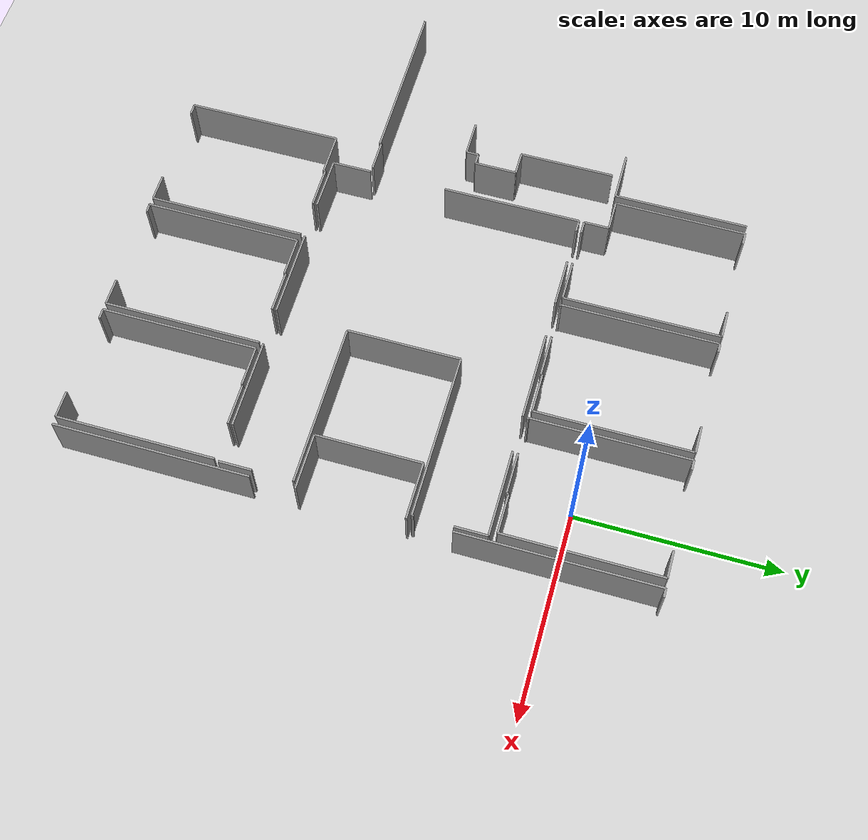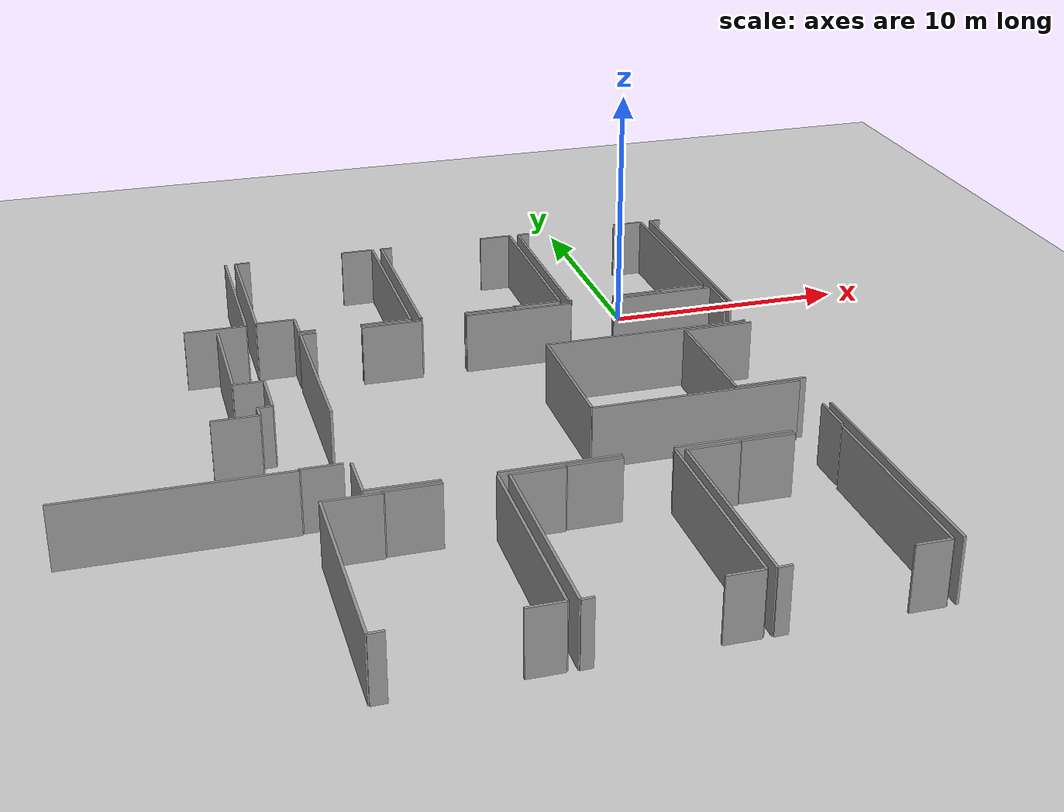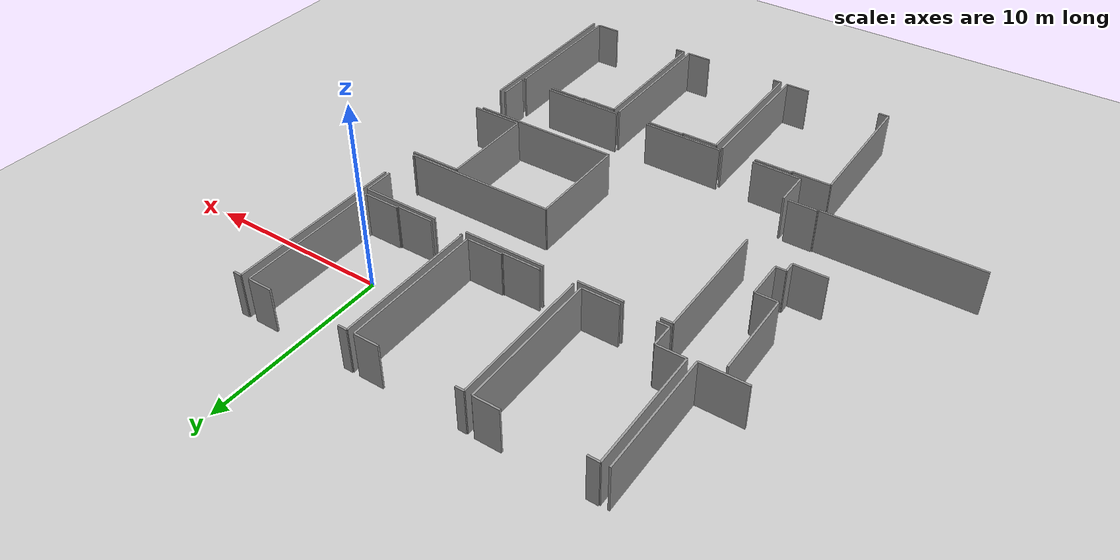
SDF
<sdf version="1.6">
 <world name="default">
  <model name="ground_plane">
   <static>1</static>
   <link name="link">
    <collision name="collision">
     <geometry><plane><normal>0 0 1</normal><size>100 100</size></plane></geometry>
     <surface><friction><ode><mu>100</mu><mu2>50</mu2></ode></friction></surface>
    </collision>
    <visual name="visual">
     <cast_shadows>0</cast_shadows>
     <geometry><plane><normal>0 0 1</normal><size>100 100</size></plane></geometry>
     <material>
      <script><uri>file://media/materials/scripts/gazebo.material</uri><name>Gazebo/Grey</name></script>
     </material>
    </visual>
   </link>
  </model>
  <model name="0510035341_A_40_1_103">
   <static>1</static>
   <link name="Wall_120">
    <collision name="Wall_120_Collision">
     <geometry><box><size>6.64694305123 0.1 2.5</size></box></geometry>
     <pose>3.32347152562 0 1.25 0 0 0</pose>
    </collision>
    <visual name="Wall_120_Visual">
     <pose>3.32347152562 0 1.25 0 0 0</pose>
     <geometry><box><size>6.64694305123 0.1 2.5</size></box></geometry>
     <material>
      <script><uri>file://media/materials/scripts/gazebo.material</uri><name>Gazebo/Grey</name></script>
      <ambient>1 1 1 1</ambient>
     </material>
    </visual>
    <pose>96.585867564 -19.2693797219 0 0 0 -1.57079632679</pose>
   </link>
   <link name="Wall_121">
    <collision name="Wall_121_Collision">
     <geometry><box><size>2.43946416101 0.1 2.5</size></box></geometry>
     <pose>1.2197320805 0 1.25 0 0 0</pose>
    </collision>
    <visual name="Wall_121_Visual">
     <pose>1.2197320805 0 1.25 0 0 0</pose>
     <geometry><box><size>2.43946416101 0.1 2.5</size></box></geometry>
     <material>
      <script><uri>file://media/materials/scripts/gazebo.material</uri><name>Gazebo/Grey</name></script>
      <ambient>1 1 1 1</ambient>
     </material>
    </visual>
    <pose>96.585867564 -25.9163227732 0 0 0 3.14159265359</pose>
   </link>
   <link name="Wall_126">
    <collision name="Wall_126_Collision">
     <geometry><box><size>4.73392165577 0.1 2.5</size></box></geometry>
     <pose>2.36696082788 0 1.25 0 0 0</pose>
    </collision>
    <visual name="Wall_126_Visual">
     <pose>2.36696082788 0 1.25 0 0 0</pose>
     <geometry><box><size>4.73392165577 0.1 2.5</size></box></geometry>
     <material>
      <script><uri>file://media/materials/scripts/gazebo.material</uri><name>Gazebo/Grey</name></script>
      <ambient>1 1 1 1</ambient>
     </material>
    </visual>
    <pose>95.4242905212 -26.3345819313 0 0 0 -1.57079632679</pose>
   </link>
   <link name="Wall_127">
    <collision name="Wall_127_Collision">
     <geometry><box><size>1.16462446829 0.1 2.5</size></box></geometry>
     <pose>0.582312234144 0 1.25 0 0 0</pose>
    </collision>
    <visual name="Wall_127_Visual">
     <pose>0.582312234144 0 1.25 0 0 0</pose>
     <geometry><box><size>1.16462446829 0.1 2.5</size></box></geometry>
     <material>
      <script><uri>file://media/materials/scripts/gazebo.material</uri><name>Gazebo/Grey</name></script>
      <ambient>1 1 1 1</ambient>
     </material>
    </visual>
    <pose>95.4242905212 -31.0685035871 0 0 0 0.0</pose>
   </link>
   <link name="Wall_128">
    <collision name="Wall_128_Collision">
     <geometry><box><size>2.10856453559 0.1 2.5</size></box></geometry>
     <pose>1.05428226779 0 1.25 0 0 0</pose>
    </collision>
    <visual name="Wall_128_Visual">
     <pose>1.05428226779 0 1.25 0 0 0</pose>
     <geometry><box><size>2.10856453559 0.1 2.5</size></box></geometry>
     <material>
      <script><uri>file://media/materials/scripts/gazebo.material</uri><name>Gazebo/Grey</name></script>
      <ambient>1 1 1 1</ambient>
     </material>
    </visual>
    <pose>96.5889149895 -31.0685035871 0 0 0 -1.57079632679</pose>
   </link>
   <link name="Wall_129">
    <collision name="Wall_129_Collision">
     <geometry><box><size>0.54294965399 0.1 2.5</size></box></geometry>
     <pose>0.271474826995 0 1.25 0 0 0</pose>
    </collision>
    <visual name="Wall_129_Visual">
     <pose>0.271474826995 0 1.25 0 0 0</pose>
     <geometry><box><size>0.54294965399 0.1 2.5</size></box></geometry>
     <material>
      <script><uri>file://media/materials/scripts/gazebo.material</uri><name>Gazebo/Grey</name></script>
      <ambient>1 1 1 1</ambient>
     </material>
    </visual>
    <pose>96.5889149895 -33.1770681227 0 0 0 3.14159265359</pose>
   </link>
   <link name="Wall_130">
    <collision name="Wall_130_Collision">
     <geometry><box><size>0.605929782236 0.1 2.5</size></box></geometry>
     <pose>0.302964891118 0 1.25 0 0 0</pose>
    </collision>
    <visual name="Wall_130_Visual">
     <pose>0.302964891118 0 1.25 0 0 0</pose>
     <geometry><box><size>0.605929782236 0.1 2.5</size></box></geometry>
     <material>
      <script><uri>file://media/materials/scripts/gazebo.material</uri><name>Gazebo/Grey</name></script>
      <ambient>1 1 1 1</ambient>
     </material>
    </visual>
    <pose>96.0459653355 -33.1770681227 0 0 0 -1.57079632679</pose>
   </link>
   <link name="Wall_131">
    <collision name="Wall_131_Collision">
     <geometry><box><size>1.76750682496 0.1 2.5</size></box></geometry>
     <pose>0.883753412482 0 1.25 0 0 0</pose>
    </collision>
    <visual name="Wall_131_Visual">
     <pose>0.883753412482 0 1.25 0 0 0</pose>
     <geometry><box><size>1.76750682496 0.1 2.5</size></box></geometry>
     <material>
      <script><uri>file://media/materials/scripts/gazebo.material</uri><name>Gazebo/Grey</name></script>
      <ambient>1 1 1 1</ambient>
     </material>
    </visual>
    <pose>96.0459653355 -33.7829979049 0 0 0 3.14159265359</pose>
   </link>
   <link name="Wall_149">
    <collision name="Wall_149_Collision">
     <geometry><box><size>6.53012507142 0.1 2.5</size></box></geometry>
     <pose>3.26506253571 0 1.25 0 0 0</pose>
    </collision>
    <visual name="Wall_149_Visual">
     <pose>3.26506253571 0 1.25 0 0 0</pose>
     <geometry><box><size>6.53012507142 0.1 2.5</size></box></geometry>
     <material>
      <script><uri>file://media/materials/scripts/gazebo.material</uri><name>Gazebo/Grey</name></script>
      <ambient>1 1 1 1</ambient>
     </material>
    </visual>
    <pose>97.0112373818 -25.8091549743 0 0 0 1.57079632679</pose>
   </link>
   <link name="Wall_150">
    <collision name="Wall_150_Collision">
     <geometry><box><size>0.601358643896 0.1 2.5</size></box></geometry>
     <pose>0.300679321948 0 1.25 0 0 0</pose>
    </collision>
    <visual name="Wall_150_Visual">
     <pose>0.300679321948 0 1.25 0 0 0</pose>
     <geometry><box><size>0.601358643896 0.1 2.5</size></box></geometry>
     <material>
      <script><uri>file://media/materials/scripts/gazebo.material</uri><name>Gazebo/Grey</name></script>
      <ambient>1 1 1 1</ambient>
     </material>
    </visual>
    <pose>97.0112373818 -19.2790299029 0 0 0 0.0</pose>
   </link>
   <link name="Wall_151">
    <collision name="Wall_151_Collision">
     <geometry><box><size>1.37489683195 0.1 2.5</size></box></geometry>
     <pose>0.687448415974 0 1.25 0 0 0</pose>
    </collision>
    <visual name="Wall_151_Visual">
     <pose>0.687448415974 0 1.25 0 0 0</pose>
     <geometry><box><size>1.37489683195 0.1 2.5</size></box></geometry>
     <material>
      <script><uri>file://media/materials/scripts/gazebo.material</uri><name>Gazebo/Grey</name></script>
      <ambient>1 1 1 1</ambient>
     </material>
    </visual>
    <pose>101.650942797 -19.2790299029 0 0 0 0.0</pose>
   </link>
   <link name="Wall_152">
    <collision name="Wall_152_Collision">
     <geometry><box><size>7.78464859374 0.1 2.5</size></box></geometry>
     <pose>3.89232429687 0 1.25 0 0 0</pose>
    </collision>
    <visual name="Wall_152_Visual">
     <pose>3.89232429687 0 1.25 0 0 0</pose>
     <geometry><box><size>7.78464859374 0.1 2.5</size></box></geometry>
     <material>
      <script><uri>file://media/materials/scripts/gazebo.material</uri><name>Gazebo/Grey</name></script>
      <ambient>1 1 1 1</ambient>
     </material>
    </visual>
    <pose>103.025839629 -19.2790299029 0 0 0 -1.57079632679</pose>
   </link>
   <link name="Wall_153">
    <collision name="Wall_153_Collision">
     <geometry><box><size>2.01409434322 0.1 2.5</size></box></geometry>
     <pose>1.00704717161 0 1.25 0 0 0</pose>
    </collision>
    <visual name="Wall_153_Visual">
     <pose>1.00704717161 0 1.25 0 0 0</pose>
     <geometry><box><size>2.01409434322 0.1 2.5</size></box></geometry>
     <material>
      <script><uri>file://media/materials/scripts/gazebo.material</uri><name>Gazebo/Grey</name></script>
      <ambient>1 1 1 1</ambient>
     </material>
    </visual>
    <pose>103.025839629 -27.0636784966 0 0 0 3.14159265359</pose>
   </link>
   <link name="Wall_154">
    <collision name="Wall_154_Collision">
     <geometry><box><size>0.639451463399 0.1 2.5</size></box></geometry>
     <pose>0.3197257317 0 1.25 0 0 0</pose>
    </collision>
    <visual name="Wall_154_Visual">
     <pose>0.3197257317 0 1.25 0 0 0</pose>
     <geometry><box><size>0.639451463399 0.1 2.5</size></box></geometry>
     <material>
      <script><uri>file://media/materials/scripts/gazebo.material</uri><name>Gazebo/Grey</name></script>
      <ambient>1 1 1 1</ambient>
     </material>
    </visual>
    <pose>99.1784648594 -27.0636784966 0 0 0 3.14159265359</pose>
   </link>
   <link name="Wall_155">
    <collision name="Wall_155_Collision">
     <geometry><box><size>1.25249190528 0.1 2.5</size></box></geometry>
     <pose>0.626245952638 0 1.25 0 0 0</pose>
    </collision>
    <visual name="Wall_155_Visual">
     <pose>0.626245952638 0 1.25 0 0 0</pose>
     <geometry><box><size>1.25249190528 0.1 2.5</size></box></geometry>
     <material>
      <script><uri>file://media/materials/scripts/gazebo.material</uri><name>Gazebo/Grey</name></script>
      <ambient>1 1 1 1</ambient>
     </material>
    </visual>
    <pose>98.539013396 -27.0636784966 0 0 0 1.57079632679</pose>
   </link>
   <link name="Wall_156">
    <collision name="Wall_156_Collision">
     <geometry><box><size>1.52777736503 0.1 2.5</size></box></geometry>
     <pose>0.763888682515 0 1.25 0 0 0</pose>
    </collision>
    <visual name="Wall_156_Visual">
     <pose>0.763888682515 0 1.25 0 0 0</pose>
     <geometry><box><size>1.52777736503 0.1 2.5</size></box></geometry>
     <material>
      <script><uri>file://media/materials/scripts/gazebo.material</uri><name>Gazebo/Grey</name></script>
      <ambient>1 1 1 1</ambient>
     </material>
    </visual>
    <pose>98.539013396 -25.8111865913 0 0 0 3.14026286714</pose>
   </link>
   <link name="Wall_157">
    <collision name="Wall_157_Collision">
     <geometry><box><size>7.7749984128 0.1 2.5</size></box></geometry>
     <pose>3.8874992064 0 1.25 0 0 0</pose>
    </collision>
    <visual name="Wall_157_Visual">
     <pose>3.8874992064 0 1.25 0 0 0</pose>
     <geometry><box><size>7.7749984128 0.1 2.5</size></box></geometry>
     <material>
      <script><uri>file://media/materials/scripts/gazebo.material</uri><name>Gazebo/Grey</name></script>
      <ambient>1 1 1 1</ambient>
     </material>
    </visual>
    <pose>103.430893277 -27.0636784966 0 0 0 1.57079632679</pose>
   </link>
   <link name="Wall_158">
    <collision name="Wall_158_Collision">
     <geometry><box><size>0.454066408482 0.1 2.5</size></box></geometry>
     <pose>0.227033204241 0 1.25 0 0 0</pose>
    </collision>
    <visual name="Wall_158_Visual">
     <pose>0.227033204241 0 1.25 0 0 0</pose>
     <geometry><box><size>0.454066408482 0.1 2.5</size></box></geometry>
     <material>
      <script><uri>file://media/materials/scripts/gazebo.material</uri><name>Gazebo/Grey</name></script>
      <ambient>1 1 1 1</ambient>
     </material>
    </visual>
    <pose>103.430893277 -19.2886800838 0 0 0 0.0</pose>
   </link>
   <link name="Wall_159">
    <collision name="Wall_159_Collision">
     <geometry><box><size>1.3533109009 0.1 2.5</size></box></geometry>
     <pose>0.676655450448 0 1.25 0 0 0</pose>
    </collision>
    <visual name="Wall_159_Visual">
     <pose>0.676655450448 0 1.25 0 0 0</pose>
     <geometry><box><size>1.3533109009 0.1 2.5</size></box></geometry>
     <material>
      <script><uri>file://media/materials/scripts/gazebo.material</uri><name>Gazebo/Grey</name></script>
      <ambient>1 1 1 1</ambient>
     </material>
    </visual>
    <pose>107.944892388 -19.2886800838 0 0 0 0.0</pose>
   </link>
   <link name="Wall_160">
    <collision name="Wall_160_Collision">
     <geometry><box><size>7.69576534823 0.1 2.5</size></box></geometry>
     <pose>3.84788267412 0 1.25 0 0 0</pose>
    </collision>
    <visual name="Wall_160_Visual">
     <pose>3.84788267412 0 1.25 0 0 0</pose>
     <geometry><box><size>7.69576534823 0.1 2.5</size></box></geometry>
     <material>
      <script><uri>file://media/materials/scripts/gazebo.material</uri><name>Gazebo/Grey</name></script>
      <ambient>1 1 1 1</ambient>
     </material>
    </visual>
    <pose>109.298203289 -19.2886800838 0 0 0 -1.57079632679</pose>
   </link>
   <link name="Wall_161">
    <collision name="Wall_161_Collision">
     <geometry><box><size>1.96178020443 0.1 2.5</size></box></geometry>
     <pose>0.980890102216 0 1.25 0 0 0</pose>
    </collision>
    <visual name="Wall_161_Visual">
     <pose>0.980890102216 0 1.25 0 0 0</pose>
     <geometry><box><size>1.96178020443 0.1 2.5</size></box></geometry>
     <material>
      <script><uri>file://media/materials/scripts/gazebo.material</uri><name>Gazebo/Grey</name></script>
      <ambient>1 1 1 1</ambient>
     </material>
    </visual>
    <pose>109.298203289 -26.984445432 0 0 0 3.14159265359</pose>
   </link>
   <link name="Wall_162">
    <collision name="Wall_162_Collision">
     <geometry><box><size>0.0792330645673 0.1 2.5</size></box></geometry>
     <pose>0.0396165322837 0 1.25 0 0 0</pose>
    </collision>
    <visual name="Wall_162_Visual">
     <pose>0.0396165322837 0 1.25 0 0 0</pose>
     <geometry><box><size>0.0792330645673 0.1 2.5</size></box></geometry>
     <material>
      <script><uri>file://media/materials/scripts/gazebo.material</uri><name>Gazebo/Grey</name></script>
      <ambient>1 1 1 1</ambient>
     </material>
    </visual>
    <pose>107.336423084 -26.984445432 0 0 0 -1.57079632679</pose>
   </link>
   <link name="Wall_163">
    <collision name="Wall_163_Collision">
     <geometry><box><size>2.0791060885 0.1 2.5</size></box></geometry>
     <pose>1.03955304425 0 1.25 0 0 0</pose>
    </collision>
    <visual name="Wall_163_Visual">
     <pose>1.03955304425 0 1.25 0 0 0</pose>
     <geometry><box><size>2.0791060885 0.1 2.5</size></box></geometry>
     <material>
      <script><uri>file://media/materials/scripts/gazebo.material</uri><name>Gazebo/Grey</name></script>
      <ambient>1 1 1 1</ambient>
     </material>
    </visual>
    <pose>107.336423084 -27.0636784966 0 0 0 3.14159265359</pose>
   </link>
   <link name="Wall_164">
    <collision name="Wall_164_Collision">
     <geometry><box><size>0.0840581550378 0.1 2.5</size></box></geometry>
     <pose>0.0420290775189 0 1.25 0 0 0</pose>
    </collision>
    <visual name="Wall_164_Visual">
     <pose>0.0420290775189 0 1.25 0 0 0</pose>
     <geometry><box><size>0.0840581550378 0.1 2.5</size></box></geometry>
     <material>
      <script><uri>file://media/materials/scripts/gazebo.material</uri><name>Gazebo/Grey</name></script>
      <ambient>1 1 1 1</ambient>
     </material>
    </visual>
    <pose>103.514951432 -27.0636784966 0 0 0 3.14159265359</pose>
   </link>
   <link name="Wall_165">
    <collision name="Wall_165_Collision">
     <geometry><box><size>7.75645990731 0.1 2.5</size></box></geometry>
     <pose>3.87822995365 0 1.25 0 0 0</pose>
    </collision>
    <visual name="Wall_165_Visual">
     <pose>3.87822995365 0 1.25 0 0 0</pose>
     <geometry><box><size>7.75645990731 0.1 2.5</size></box></geometry>
     <material>
      <script><uri>file://media/materials/scripts/gazebo.material</uri><name>Gazebo/Grey</name></script>
      <ambient>1 1 1 1</ambient>
     </material>
    </visual>
    <pose>109.696654181 -27.0398069964 0 0 0 1.57079632679</pose>
   </link>
   <link name="Wall_166">
    <collision name="Wall_166_Collision">
     <geometry><box><size>0.501555456796 0.1 2.5</size></box></geometry>
     <pose>0.250777728398 0 1.25 0 0 0</pose>
    </collision>
    <visual name="Wall_166_Visual">
     <pose>0.250777728398 0 1.25 0 0 0</pose>
     <geometry><box><size>0.501555456796 0.1 2.5</size></box></geometry>
     <material>
      <script><uri>file://media/materials/scripts/gazebo.material</uri><name>Gazebo/Grey</name></script>
      <ambient>1 1 1 1</ambient>
     </material>
    </visual>
    <pose>109.696654181 -19.2833470891 0 0 0 0.0</pose>
   </link>
   <link name="Wall_167">
    <collision name="Wall_167_Collision">
     <geometry><box><size>1.33070916132 0.1 2.5</size></box></geometry>
     <pose>0.665354580662 0 1.25 0 0 0</pose>
    </collision>
    <visual name="Wall_167_Visual">
     <pose>0.665354580662 0 1.25 0 0 0</pose>
     <geometry><box><size>1.33070916132 0.1 2.5</size></box></geometry>
     <material>
      <script><uri>file://media/materials/scripts/gazebo.material</uri><name>Gazebo/Grey</name></script>
      <ambient>1 1 1 1</ambient>
     </material>
    </visual>
    <pose>114.234524792 -19.2833470891 0 0 0 0.0</pose>
   </link>
   <link name="Wall_168">
    <collision name="Wall_168_Collision">
     <geometry><box><size>7.69601930036 0.1 2.5</size></box></geometry>
     <pose>3.84800965018 0 1.25 0 0 0</pose>
    </collision>
    <visual name="Wall_168_Visual">
     <pose>3.84800965018 0 1.25 0 0 0</pose>
     <geometry><box><size>7.69601930036 0.1 2.5</size></box></geometry>
     <material>
      <script><uri>file://media/materials/scripts/gazebo.material</uri><name>Gazebo/Grey</name></script>
      <ambient>1 1 1 1</ambient>
     </material>
    </visual>
    <pose>115.565233953 -19.2833470891 0 0 0 -1.57079632679</pose>
   </link>
   <link name="Wall_169">
    <collision name="Wall_169_Collision">
     <geometry><box><size>1.95213002349 0.1 2.5</size></box></geometry>
     <pose>0.976065011745 0 1.25 0 0 0</pose>
    </collision>
    <visual name="Wall_169_Visual">
     <pose>0.976065011745 0 1.25 0 0 0</pose>
     <geometry><box><size>1.95213002349 0.1 2.5</size></box></geometry>
     <material>
      <script><uri>file://media/materials/scripts/gazebo.material</uri><name>Gazebo/Grey</name></script>
      <ambient>1 1 1 1</ambient>
     </material>
    </visual>
    <pose>115.565233953 -26.9793663894 0 0 0 3.14159265359</pose>
   </link>
   <link name="Wall_170">
    <collision name="Wall_170_Collision">
     <geometry><box><size>0.100311091359 0.1 2.5</size></box></geometry>
     <pose>0.0501555456796 0 1.25 0 0 0</pose>
    </collision>
    <visual name="Wall_170_Visual">
     <pose>0.0501555456796 0 1.25 0 0 0</pose>
     <geometry><box><size>0.100311091359 0.1 2.5</size></box></geometry>
     <material>
      <script><uri>file://media/materials/scripts/gazebo.material</uri><name>Gazebo/Grey</name></script>
      <ambient>1 1 1 1</ambient>
     </material>
    </visual>
    <pose>113.61310393 -26.9793663894 0 0 0 -1.57079632679</pose>
   </link>
   <link name="Wall_171">
    <collision name="Wall_171_Collision">
     <geometry><box><size>2.05269506698 0.1 2.5</size></box></geometry>
     <pose>1.02634753349 0 1.25 0 0 0</pose>
    </collision>
    <visual name="Wall_171_Visual">
     <pose>1.02634753349 0 1.25 0 0 0</pose>
     <geometry><box><size>2.05269506698 0.1 2.5</size></box></geometry>
     <material>
      <script><uri>file://media/materials/scripts/gazebo.material</uri><name>Gazebo/Grey</name></script>
      <ambient>1 1 1 1</ambient>
     </material>
    </visual>
    <pose>113.61310393 -27.0796774808 0 0 0 3.14159265359</pose>
   </link>
   <link name="Wall_172">
    <collision name="Wall_172_Collision">
     <geometry><box><size>0.100204310339 0.1 2.5</size></box></geometry>
     <pose>0.0501021551694 0 1.25 0 0 0</pose>
    </collision>
    <visual name="Wall_172_Visual">
     <pose>0.0501021551694 0 1.25 0 0 0</pose>
     <geometry><box><size>0.100204310339 0.1 2.5</size></box></geometry>
     <material>
      <script><uri>file://media/materials/scripts/gazebo.material</uri><name>Gazebo/Grey</name></script>
      <ambient>1 1 1 1</ambient>
     </material>
    </visual>
    <pose>109.788584852 -27.0796774808 0 0 0 2.73237477116</pose>
   </link>
   <link name="Wall_173">
    <collision name="Wall_173_Collision">
     <geometry><box><size>1.95695511396 0.1 2.5</size></box></geometry>
     <pose>0.978477556981 0 1.25 0 0 0</pose>
    </collision>
    <visual name="Wall_173_Visual">
     <pose>0.978477556981 0 1.25 0 0 0</pose>
     <geometry><box><size>1.95695511396 0.1 2.5</size></box></geometry>
     <material>
      <script><uri>file://media/materials/scripts/gazebo.material</uri><name>Gazebo/Grey</name></script>
      <ambient>1 1 1 1</ambient>
     </material>
    </visual>
    <pose>98.5334264491 -40.0832962986 0 0 0 1.57079632679</pose>
   </link>
   <link name="Wall_174">
    <collision name="Wall_174_Collision">
     <geometry><box><size>6.89353056949 0.1 2.5</size></box></geometry>
     <pose>3.44676528474 0 1.25 0 0 0</pose>
    </collision>
    <visual name="Wall_174_Visual">
     <pose>3.44676528474 0 1.25 0 0 0</pose>
     <geometry><box><size>6.89353056949 0.1 2.5</size></box></geometry>
     <material>
      <script><uri>file://media/materials/scripts/gazebo.material</uri><name>Gazebo/Grey</name></script>
      <ambient>1 1 1 1</ambient>
     </material>
    </visual>
    <pose>98.5334264491 -34.2279220367 0 0 0 1.57079632679</pose>
   </link>
   <link name="Wall_175">
    <collision name="Wall_175_Collision">
     <geometry><box><size>0.616849723827 0.1 2.5</size></box></geometry>
     <pose>0.308424861914 0 1.25 0 0 0</pose>
    </collision>
    <visual name="Wall_175_Visual">
     <pose>0.308424861914 0 1.25 0 0 0</pose>
     <geometry><box><size>0.616849723827 0.1 2.5</size></box></geometry>
     <material>
      <script><uri>file://media/materials/scripts/gazebo.material</uri><name>Gazebo/Grey</name></script>
      <ambient>1 1 1 1</ambient>
     </material>
    </visual>
    <pose>98.5334264491 -27.3343914672 0 0 0 0.0</pose>
   </link>
   <link name="Wall_176">
    <collision name="Wall_176_Collision">
     <geometry><box><size>2.4115294267 0.1 2.5</size></box></geometry>
     <pose>1.20576471335 0 1.25 0 0 0</pose>
    </collision>
    <visual name="Wall_176_Visual">
     <pose>1.20576471335 0 1.25 0 0 0</pose>
     <geometry><box><size>2.4115294267 0.1 2.5</size></box></geometry>
     <material>
      <script><uri>file://media/materials/scripts/gazebo.material</uri><name>Gazebo/Grey</name></script>
      <ambient>1 1 1 1</ambient>
     </material>
    </visual>
    <pose>100.99549235 -27.3343914672 0 0 0 0.0</pose>
   </link>
   <link name="Wall_177">
    <collision name="Wall_177_Collision">
     <geometry><box><size>4.41546568472 0.1 2.5</size></box></geometry>
     <pose>2.20773284236 0 1.25 0 0 0</pose>
    </collision>
    <visual name="Wall_177_Visual">
     <pose>2.20773284236 0 1.25 0 0 0</pose>
     <geometry><box><size>4.41546568472 0.1 2.5</size></box></geometry>
     <material>
      <script><uri>file://media/materials/scripts/gazebo.material</uri><name>Gazebo/Grey</name></script>
      <ambient>1 1 1 1</ambient>
     </material>
    </visual>
    <pose>105.259856517 -27.3343914672 0 0 0 0.0</pose>
   </link>
   <link name="Wall_178">
    <collision name="Wall_178_Collision">
     <geometry><box><size>4.28036315155 0.1 2.5</size></box></geometry>
     <pose>2.14018157577 0 1.25 0 0 0</pose>
    </collision>
    <visual name="Wall_178_Visual">
     <pose>2.14018157577 0 1.25 0 0 0</pose>
     <geometry><box><size>4.28036315155 0.1 2.5</size></box></geometry>
     <material>
      <script><uri>file://media/materials/scripts/gazebo.material</uri><name>Gazebo/Grey</name></script>
      <ambient>1 1 1 1</ambient>
     </material>
    </visual>
    <pose>111.529680655 -27.3343914672 0 0 0 0.0</pose>
   </link>
   <link name="Wall_179">
    <collision name="Wall_179_Collision">
     <geometry><box><size>1.60193003619 0.1 2.5</size></box></geometry>
     <pose>0.800965018094 0 1.25 0 0 0</pose>
    </collision>
    <visual name="Wall_179_Visual">
     <pose>0.800965018094 0 1.25 0 0 0</pose>
     <geometry><box><size>1.60193003619 0.1 2.5</size></box></geometry>
     <material>
      <script><uri>file://media/materials/scripts/gazebo.material</uri><name>Gazebo/Grey</name></script>
      <ambient>1 1 1 1</ambient>
     </material>
    </visual>
    <pose>115.810043807 -27.3343914672 0 0 0 -1.57079632679</pose>
   </link>
   <link name="Wall_180">
    <collision name="Wall_180_Collision">
     <geometry><box><size>0.0987873785791 0.1 2.5</size></box></geometry>
     <pose>0.0493936892896 0 1.25 0 0 0</pose>
    </collision>
    <visual name="Wall_180_Visual">
     <pose>0.0493936892896 0 1.25 0 0 0</pose>
     <geometry><box><size>0.0987873785791 0.1 2.5</size></box></geometry>
     <material>
      <script><uri>file://media/materials/scripts/gazebo.material</uri><name>Gazebo/Grey</name></script>
      <ambient>1 1 1 1</ambient>
     </material>
    </visual>
    <pose>115.810043807 -30.7916957653 0 0 0 -1.57079632679</pose>
   </link>
   <link name="Wall_181">
    <collision name="Wall_181_Collision">
     <geometry><box><size>8.21966859247 0.1 2.5</size></box></geometry>
     <pose>4.10983429624 0 1.25 0 0 0</pose>
    </collision>
    <visual name="Wall_181_Visual">
     <pose>4.10983429624 0 1.25 0 0 0</pose>
     <geometry><box><size>8.21966859247 0.1 2.5</size></box></geometry>
     <material>
      <script><uri>file://media/materials/scripts/gazebo.material</uri><name>Gazebo/Grey</name></script>
      <ambient>1 1 1 1</ambient>
     </material>
    </visual>
    <pose>115.810043807 -30.8904831439 0 0 0 3.14159265359</pose>
   </link>
   <link name="Wall_182">
    <collision name="Wall_182_Collision">
     <geometry><box><size>5.61081836074 0.1 2.5</size></box></geometry>
     <pose>2.80540918037 0 1.25 0 0 0</pose>
    </collision>
    <visual name="Wall_182_Visual">
     <pose>2.80540918037 0 1.25 0 0 0</pose>
     <geometry><box><size>5.61081836074 0.1 2.5</size></box></geometry>
     <material>
      <script><uri>file://media/materials/scripts/gazebo.material</uri><name>Gazebo/Grey</name></script>
      <ambient>1 1 1 1</ambient>
     </material>
    </visual>
    <pose>107.590375214 -30.8904831439 0 0 0 -1.57079632679</pose>
   </link>
   <link name="Wall_183">
    <collision name="Wall_183_Collision">
     <geometry><box><size>8.09827947432 0.1 2.5</size></box></geometry>
     <pose>4.04913973716 0 1.25 0 0 0</pose>
    </collision>
    <visual name="Wall_183_Visual">
     <pose>4.04913973716 0 1.25 0 0 0</pose>
     <geometry><box><size>8.09827947432 0.1 2.5</size></box></geometry>
     <material>
      <script><uri>file://media/materials/scripts/gazebo.material</uri><name>Gazebo/Grey</name></script>
      <ambient>1 1 1 1</ambient>
     </material>
    </visual>
    <pose>107.590375214 -36.5013015047 0 0 0 0.0</pose>
   </link>
   <link name="Wall_184">
    <collision name="Wall_184_Collision">
     <geometry><box><size>1.61970668529 0.1 2.5</size></box></geometry>
     <pose>0.809853342645 0 1.25 0 0 0</pose>
    </collision>
    <visual name="Wall_184_Visual">
     <pose>0.809853342645 0 1.25 0 0 0</pose>
     <geometry><box><size>1.61970668529 0.1 2.5</size></box></geometry>
     <material>
      <script><uri>file://media/materials/scripts/gazebo.material</uri><name>Gazebo/Grey</name></script>
      <ambient>1 1 1 1</ambient>
     </material>
    </visual>
    <pose>115.688654689 -38.4884769221 0 0 0 -1.57079632679</pose>
   </link>
   <link name="Wall_185">
    <collision name="Wall_185_Collision">
     <geometry><box><size>4.40657736017 0.1 2.5</size></box></geometry>
     <pose>2.20328868008 0 1.25 0 0 0</pose>
    </collision>
    <visual name="Wall_185_Visual">
     <pose>2.20328868008 0 1.25 0 0 0</pose>
     <geometry><box><size>4.40657736017 0.1 2.5</size></box></geometry>
     <material>
      <script><uri>file://media/materials/scripts/gazebo.material</uri><name>Gazebo/Grey</name></script>
      <ambient>1 1 1 1</ambient>
     </material>
    </visual>
    <pose>113.77283982 -40.1081836074 0 0 0 3.14159265359</pose>
   </link>
   <link name="Wall_186">
    <collision name="Wall_186_Collision">
     <geometry><box><size>4.3915941845 0.1 2.5</size></box></geometry>
     <pose>2.19579709225 0 1.25 0 0 0</pose>
    </collision>
    <visual name="Wall_186_Visual">
     <pose>2.19579709225 0 1.25 0 0 0</pose>
     <geometry><box><size>4.3915941845 0.1 2.5</size></box></geometry>
     <material>
      <script><uri>file://media/materials/scripts/gazebo.material</uri><name>Gazebo/Grey</name></script>
      <ambient>1 1 1 1</ambient>
     </material>
    </visual>
    <pose>107.474573043 -40.1081836074 0 0 0 3.14159265359</pose>
   </link>
   <link name="Wall_187">
    <collision name="Wall_187_Collision">
     <geometry><box><size>2.64325093407 0.1 2.5</size></box></geometry>
     <pose>1.32162546704 0 1.25 0 0 0</pose>
    </collision>
    <visual name="Wall_187_Visual">
     <pose>1.32162546704 0 1.25 0 0 0</pose>
     <geometry><box><size>2.64325093407 0.1 2.5</size></box></geometry>
     <material>
      <script><uri>file://media/materials/scripts/gazebo.material</uri><name>Gazebo/Grey</name></script>
      <ambient>1 1 1 1</ambient>
     </material>
    </visual>
    <pose>101.176560218 -40.1081836074 0 0 0 3.13217709786</pose>
   </link>
   <link name="Wall_188">
    <collision name="Wall_188_Collision">
     <geometry><box><size>5.22303345819 0.1 2.5</size></box></geometry>
     <pose>2.6115167291 0 1.25 0 0 0</pose>
    </collision>
    <visual name="Wall_188_Visual">
     <pose>2.6115167291 0 1.25 0 0 0</pose>
     <geometry><box><size>5.22303345819 0.1 2.5</size></box></geometry>
     <material>
      <script><uri>file://media/materials/scripts/gazebo.material</uri><name>Gazebo/Grey</name></script>
      <ambient>1 1 1 1</ambient>
     </material>
    </visual>
    <pose>113.220493937 -36.3141387848 0 0 0 1.57079632679</pose>
   </link>
   <link name="Wall_189">
    <collision name="Wall_189_Collision">
     <geometry><box><size>2.80210780268 0.1 2.5</size></box></geometry>
     <pose>1.40105390134 0 1.25 0 0 0</pose>
    </collision>
    <visual name="Wall_189_Visual">
     <pose>1.40105390134 0 1.25 0 0 0</pose>
     <geometry><box><size>2.80210780268 0.1 2.5</size></box></geometry>
     <material>
      <script><uri>file://media/materials/scripts/gazebo.material</uri><name>Gazebo/Grey</name></script>
      <ambient>1 1 1 1</ambient>
     </material>
    </visual>
    <pose>113.220493937 -31.0911053266 0 0 0 0.0</pose>
   </link>
   <link name="Wall_191">
    <collision name="Wall_191_Collision">
     <geometry><box><size>2.78864833979 0.1 2.5</size></box></geometry>
     <pose>1.39432416989 0 1.25 0 0 0</pose>
    </collision>
    <visual name="Wall_191_Visual">
     <pose>1.39432416989 0 1.25 0 0 0</pose>
     <geometry><box><size>2.78864833979 0.1 2.5</size></box></geometry>
     <material>
      <script><uri>file://media/materials/scripts/gazebo.material</uri><name>Gazebo/Grey</name></script>
      <ambient>1 1 1 1</ambient>
     </material>
    </visual>
    <pose>116.009142277 -36.3141387848 0 0 0 3.14159265359</pose>
   </link>
   <link name="Wall_192">
    <collision name="Wall_192_Collision">
     <geometry><box><size>9.62935686623 0.1 2.5</size></box></geometry>
     <pose>4.81467843312 0 1.25 0 0 0</pose>
    </collision>
    <visual name="Wall_192_Visual">
     <pose>4.81467843312 0 1.25 0 0 0</pose>
     <geometry><box><size>9.62935686623 0.1 2.5</size></box></geometry>
     <material>
      <script><uri>file://media/materials/scripts/gazebo.material</uri><name>Gazebo/Grey</name></script>
      <ambient>1 1 1 1</ambient>
     </material>
    </visual>
    <pose>116.013205511 -48.1173258841 0 0 0 1.57079632679</pose>
   </link>
   <link name="Wall_196">
    <collision name="Wall_196_Collision">
     <geometry><box><size>9.67532220176 0.1 2.5</size></box></geometry>
     <pose>4.83766110088 0 1.25 0 0 0</pose>
    </collision>
    <visual name="Wall_196_Visual">
     <pose>4.83766110088 0 1.25 0 0 0</pose>
     <geometry><box><size>9.67532220176 0.1 2.5</size></box></geometry>
     <material>
      <script><uri>file://media/materials/scripts/gazebo.material</uri><name>Gazebo/Grey</name></script>
      <ambient>1 1 1 1</ambient>
     </material>
    </visual>
    <pose>116.042410006 -28.9254015618 0 0 0 1.57079632679</pose>
   </link>
   <link name="Wall_197">
    <collision name="Wall_197_Collision">
     <geometry><box><size>0.43501999873 0.1 2.5</size></box></geometry>
     <pose>0.217509999365 0 1.25 0 0 0</pose>
    </collision>
    <visual name="Wall_197_Visual">
     <pose>0.217509999365 0 1.25 0 0 0</pose>
     <geometry><box><size>0.43501999873 0.1 2.5</size></box></geometry>
     <material>
      <script><uri>file://media/materials/scripts/gazebo.material</uri><name>Gazebo/Grey</name></script>
      <ambient>1 1 1 1</ambient>
     </material>
    </visual>
    <pose>116.042410006 -19.25007936 0 0 0 0.0</pose>
   </link>
   <link name="Wall_212">
    <collision name="Wall_212_Collision">
     <geometry><box><size>7.74046092312 0.1 2.5</size></box></geometry>
     <pose>3.87023046156 0 1.25 0 0 0</pose>
    </collision>
    <visual name="Wall_212_Visual">
     <pose>3.87023046156 0 1.25 0 0 0</pose>
     <geometry><box><size>7.74046092312 0.1 2.5</size></box></geometry>
     <material>
      <script><uri>file://media/materials/scripts/gazebo.material</uri><name>Gazebo/Grey</name></script>
      <ambient>1 1 1 1</ambient>
     </material>
    </visual>
    <pose>109.696400229 -48.1168179798 0 0 0 1.57079632679</pose>
   </link>
   <link name="Wall_213">
    <collision name="Wall_213_Collision">
     <geometry><box><size>2.01993524221 0.1 2.5</size></box></geometry>
     <pose>1.0099676211 0 1.25 0 0 0</pose>
    </collision>
    <visual name="Wall_213_Visual">
     <pose>1.0099676211 0 1.25 0 0 0</pose>
     <geometry><box><size>2.01993524221 0.1 2.5</size></box></geometry>
     <material>
      <script><uri>file://media/materials/scripts/gazebo.material</uri><name>Gazebo/Grey</name></script>
      <ambient>1 1 1 1</ambient>
     </material>
    </visual>
    <pose>109.696400229 -40.3763570567 0 0 0 0.0</pose>
   </link>
   <link name="Wall_214">
    <collision name="Wall_214_Collision">
     <geometry><box><size>0.0548536600851 0.1 2.5</size></box></geometry>
     <pose>0.0274268300425 0 1.25 0 0 0</pose>
    </collision>
    <visual name="Wall_214_Visual">
     <pose>0.0274268300425 0 1.25 0 0 0</pose>
     <geometry><box><size>0.0548536600851 0.1 2.5</size></box></geometry>
     <material>
      <script><uri>file://media/materials/scripts/gazebo.material</uri><name>Gazebo/Grey</name></script>
      <ambient>1 1 1 1</ambient>
     </material>
    </visual>
    <pose>111.716335471 -40.3763570567 0 0 0 1.57079632679</pose>
   </link>
   <link name="Wall_215">
    <collision name="Wall_215_Collision">
     <geometry><box><size>2.05320297124 0.1 2.5</size></box></geometry>
     <pose>1.02660148562 0 1.25 0 0 0</pose>
    </collision>
    <visual name="Wall_215_Visual">
     <pose>1.02660148562 0 1.25 0 0 0</pose>
     <geometry><box><size>2.05320297124 0.1 2.5</size></box></geometry>
     <material>
      <script><uri>file://media/materials/scripts/gazebo.material</uri><name>Gazebo/Grey</name></script>
      <ambient>1 1 1 1</ambient>
     </material>
    </visual>
    <pose>111.716335471 -40.3215033966 0 0 0 0.0</pose>
   </link>
   <link name="Wall_216">
    <collision name="Wall_216_Collision">
     <geometry><box><size>7.77931559901 0.1 2.5</size></box></geometry>
     <pose>3.8896577995 0 1.25 0 0 0</pose>
    </collision>
    <visual name="Wall_216_Visual">
     <pose>3.8896577995 0 1.25 0 0 0</pose>
     <geometry><box><size>7.77931559901 0.1 2.5</size></box></geometry>
     <material>
      <script><uri>file://media/materials/scripts/gazebo.material</uri><name>Gazebo/Grey</name></script>
      <ambient>1 1 1 1</ambient>
     </material>
    </visual>
    <pose>115.616786236 -40.3215033966 0 0 0 -1.57079632679</pose>
   </link>
   <link name="Wall_217">
    <collision name="Wall_217_Collision">
     <geometry><box><size>1.31369436861 0.1 2.5</size></box></geometry>
     <pose>0.656847184306 0 1.25 0 0 0</pose>
    </collision>
    <visual name="Wall_217_Visual">
     <pose>0.656847184306 0 1.25 0 0 0</pose>
     <geometry><box><size>1.31369436861 0.1 2.5</size></box></geometry>
     <material>
      <script><uri>file://media/materials/scripts/gazebo.material</uri><name>Gazebo/Grey</name></script>
      <ambient>1 1 1 1</ambient>
     </material>
    </visual>
    <pose>115.616786236 -48.1008189956 0 0 0 3.14159265359</pose>
   </link>
   <link name="Wall_218">
    <collision name="Wall_218_Collision">
     <geometry><box><size>0.503587329966 0.1 2.5</size></box></geometry>
     <pose>0.251793664983 0 1.25 0 0 0</pose>
    </collision>
    <visual name="Wall_218_Visual">
     <pose>0.251793664983 0 1.25 0 0 0</pose>
     <geometry><box><size>0.503587329966 0.1 2.5</size></box></geometry>
     <material>
      <script><uri>file://media/materials/scripts/gazebo.material</uri><name>Gazebo/Grey</name></script>
      <ambient>1 1 1 1</ambient>
     </material>
    </visual>
    <pose>110.19973335 -48.1008189956 0 0 0 -3.1098172775</pose>
   </link>
   <link name="Wall_219">
    <collision name="Wall_219_Collision">
     <geometry><box><size>7.73588978478 0.1 2.5</size></box></geometry>
     <pose>3.86794489239 0 1.25 0 0 0</pose>
    </collision>
    <visual name="Wall_219_Visual">
     <pose>3.86794489239 0 1.25 0 0 0</pose>
     <geometry><box><size>7.73588978478 0.1 2.5</size></box></geometry>
     <material>
      <script><uri>file://media/materials/scripts/gazebo.material</uri><name>Gazebo/Grey</name></script>
      <ambient>1 1 1 1</ambient>
     </material>
    </visual>
    <pose>103.438257888 -48.1277379214 0 0 0 1.57079632679</pose>
   </link>
   <link name="Wall_220">
    <collision name="Wall_220_Collision">
     <geometry><box><size>1.96482762999 0.1 2.5</size></box></geometry>
     <pose>0.982413814996 0 1.25 0 0 0</pose>
    </collision>
    <visual name="Wall_220_Visual">
     <pose>0.982413814996 0 1.25 0 0 0</pose>
     <geometry><box><size>1.96482762999 0.1 2.5</size></box></geometry>
     <material>
      <script><uri>file://media/materials/scripts/gazebo.material</uri><name>Gazebo/Grey</name></script>
      <ambient>1 1 1 1</ambient>
     </material>
    </visual>
    <pose>103.438257888 -40.3918481366 0 0 0 0.0</pose>
   </link>
   <link name="Wall_221">
    <collision name="Wall_221_Collision">
     <geometry><box><size>0.0711065964066 0.1 2.5</size></box></geometry>
     <pose>0.0355532982033 0 1.25 0 0 0</pose>
    </collision>
    <visual name="Wall_221_Visual">
     <pose>0.0355532982033 0 1.25 0 0 0</pose>
     <geometry><box><size>0.0711065964066 0.1 2.5</size></box></geometry>
     <material>
      <script><uri>file://media/materials/scripts/gazebo.material</uri><name>Gazebo/Grey</name></script>
      <ambient>1 1 1 1</ambient>
     </material>
    </visual>
    <pose>105.403085518 -40.3918481366 0 0 0 1.57079632679</pose>
   </link>
   <link name="Wall_222">
    <collision name="Wall_222_Collision">
     <geometry><box><size>2.06209129579 0.1 2.5</size></box></geometry>
     <pose>1.0310456479 0 1.25 0 0 0</pose>
    </collision>
    <visual name="Wall_222_Visual">
     <pose>1.0310456479 0 1.25 0 0 0</pose>
     <geometry><box><size>2.06209129579 0.1 2.5</size></box></geometry>
     <material>
      <script><uri>file://media/materials/scripts/gazebo.material</uri><name>Gazebo/Grey</name></script>
      <ambient>1 1 1 1</ambient>
     </material>
    </visual>
    <pose>105.403085518 -40.3207415402 0 0 0 0.0</pose>
   </link>
   <link name="Wall_223">
    <collision name="Wall_223_Collision">
     <geometry><box><size>7.78490254587 0.1 2.5</size></box></geometry>
     <pose>3.89245127294 0 1.25 0 0 0</pose>
    </collision>
    <visual name="Wall_223_Visual">
     <pose>3.89245127294 0 1.25 0 0 0</pose>
     <geometry><box><size>7.78490254587 0.1 2.5</size></box></geometry>
     <material>
      <script><uri>file://media/materials/scripts/gazebo.material</uri><name>Gazebo/Grey</name></script>
      <ambient>1 1 1 1</ambient>
     </material>
    </visual>
    <pose>109.34366072 -40.3207415402 0 0 0 -1.57079632679</pose>
   </link>
   <link name="Wall_224">
    <collision name="Wall_224_Collision">
     <geometry><box><size>1.34924766681 0.1 2.5</size></box></geometry>
     <pose>0.674623833407 0 1.25 0 0 0</pose>
    </collision>
    <visual name="Wall_224_Visual">
     <pose>0.674623833407 0 1.25 0 0 0</pose>
     <geometry><box><size>1.34924766681 0.1 2.5</size></box></geometry>
     <material>
      <script><uri>file://media/materials/scripts/gazebo.material</uri><name>Gazebo/Grey</name></script>
      <ambient>1 1 1 1</ambient>
     </material>
    </visual>
    <pose>109.34366072 -48.1056440861 0 0 0 3.14159265359</pose>
   </link>
   <link name="Wall_225">
    <collision name="Wall_225_Collision">
     <geometry><box><size>0.448008770456 0.1 2.5</size></box></geometry>
     <pose>0.224004385228 0 1.25 0 0 0</pose>
    </collision>
    <visual name="Wall_225_Visual">
     <pose>0.224004385228 0 1.25 0 0 0</pose>
     <geometry><box><size>0.448008770456 0.1 2.5</size></box></geometry>
     <material>
      <script><uri>file://media/materials/scripts/gazebo.material</uri><name>Gazebo/Grey</name></script>
      <ambient>1 1 1 1</ambient>
     </material>
    </visual>
    <pose>103.885721541 -48.1056440861 0 0 0 -3.09225701092</pose>
   </link>
   <link name="Wall_226">
    <collision name="Wall_226_Collision">
     <geometry><box><size>7.68738492794 0.1 2.5</size></box></geometry>
     <pose>3.84369246397 0 1.25 0 0 0</pose>
    </collision>
    <visual name="Wall_226_Visual">
     <pose>3.84369246397 0 1.25 0 0 0</pose>
     <geometry><box><size>7.68738492794 0.1 2.5</size></box></geometry>
     <material>
      <script><uri>file://media/materials/scripts/gazebo.material</uri><name>Gazebo/Grey</name></script>
      <ambient>1 1 1 1</ambient>
     </material>
    </visual>
    <pose>97.068376611 -48.1013268999 0 0 0 1.57079632679</pose>
   </link>
   <link name="Wall_227">
    <collision name="Wall_227_Collision">
     <geometry><box><size>2.08012189702 0.1 2.5</size></box></geometry>
     <pose>1.04006094851 0 1.25 0 0 0</pose>
    </collision>
    <visual name="Wall_227_Visual">
     <pose>1.04006094851 0 1.25 0 0 0</pose>
     <geometry><box><size>2.08012189702 0.1 2.5</size></box></geometry>
     <material>
      <script><uri>file://media/materials/scripts/gazebo.material</uri><name>Gazebo/Grey</name></script>
      <ambient>1 1 1 1</ambient>
     </material>
    </visual>
    <pose>97.068376611 -40.4139419719 0 0 0 0.0</pose>
   </link>
   <link name="Wall_228">
    <collision name="Wall_228_Collision">
     <geometry><box><size>0.0853279156879 0.1 2.5</size></box></geometry>
     <pose>0.0426639578439 0 1.25 0 0 0</pose>
    </collision>
    <visual name="Wall_228_Visual">
     <pose>0.0426639578439 0 1.25 0 0 0</pose>
     <geometry><box><size>0.0853279156879 0.1 2.5</size></box></geometry>
     <material>
      <script><uri>file://media/materials/scripts/gazebo.material</uri><name>Gazebo/Grey</name></script>
      <ambient>1 1 1 1</ambient>
     </material>
    </visual>
    <pose>99.148498508 -40.4139419719 0 0 0 1.57079632679</pose>
   </link>
   <link name="Wall_229">
    <collision name="Wall_229_Collision">
     <geometry><box><size>2.02526823694 0.1 2.5</size></box></geometry>
     <pose>1.01263411847 0 1.25 0 0 0</pose>
    </collision>
    <visual name="Wall_229_Visual">
     <pose>1.01263411847 0 1.25 0 0 0</pose>
     <geometry><box><size>2.02526823694 0.1 2.5</size></box></geometry>
     <material>
      <script><uri>file://media/materials/scripts/gazebo.material</uri><name>Gazebo/Grey</name></script>
      <ambient>1 1 1 1</ambient>
     </material>
    </visual>
    <pose>99.148498508 -40.3286140563 0 0 0 0.0</pose>
   </link>
   <link name="Wall_230">
    <collision name="Wall_230_Collision">
     <geometry><box><size>7.76331661482 0.1 2.5</size></box></geometry>
     <pose>3.88165830741 0 1.25 0 0 0</pose>
    </collision>
    <visual name="Wall_230_Visual">
     <pose>3.88165830741 0 1.25 0 0 0</pose>
     <geometry><box><size>7.76331661482 0.1 2.5</size></box></geometry>
     <material>
      <script><uri>file://media/materials/scripts/gazebo.material</uri><name>Gazebo/Grey</name></script>
      <ambient>1 1 1 1</ambient>
     </material>
    </visual>
    <pose>103.042854422 -40.3286140563 0 0 0 -1.57079632679</pose>
   </link>
   <link name="Wall_231">
    <collision name="Wall_231_Collision">
     <geometry><box><size>1.31547203352 0.1 2.5</size></box></geometry>
     <pose>0.657736016761 0 1.25 0 0 0</pose>
    </collision>
    <visual name="Wall_231_Visual">
     <pose>0.657736016761 0 1.25 0 0 0</pose>
     <geometry><box><size>1.31547203352 0.1 2.5</size></box></geometry>
     <material>
      <script><uri>file://media/materials/scripts/gazebo.material</uri><name>Gazebo/Grey</name></script>
      <ambient>1 1 1 1</ambient>
     </material>
    </visual>
    <pose>103.042854422 -48.0919306711 0 0 0 3.14159265359</pose>
   </link>
   <link name="Wall_232">
    <collision name="Wall_232_Collision">
     <geometry><box><size>0.551410137668 0.1 2.5</size></box></geometry>
     <pose>0.275705068834 0 1.25 0 0 0</pose>
    </collision>
    <visual name="Wall_232_Visual">
     <pose>0.275705068834 0 1.25 0 0 0</pose>
     <geometry><box><size>0.551410137668 0.1 2.5</size></box></geometry>
     <material>
      <script><uri>file://media/materials/scripts/gazebo.material</uri><name>Gazebo/Grey</name></script>
      <ambient>1 1 1 1</ambient>
     </material>
    </visual>
    <pose>97.6197066853 -48.0919306711 0 0 0 -3.12455146598</pose>
   </link>
   <link name="Wall_242">
    <collision name="Wall_242_Collision">
     <geometry><box><size>1.52193511523 0.1 2.5</size></box></geometry>
     <pose>0.760967557615 0 1.25 0 0 0</pose>
    </collision>
    <visual name="Wall_242_Visual">
     <pose>0.760967557615 0 1.25 0 0 0</pose>
     <geometry><box><size>1.52193511523 0.1 2.5</size></box></geometry>
     <material>
      <script><uri>file://media/materials/scripts/gazebo.material</uri><name>Gazebo/Grey</name></script>
      <ambient>1 1 1 1</ambient>
     </material>
    </visual>
    <pose>98.2670306647 -38.0961208812 0 0 0 3.14159265359</pose>
   </link>
   <link name="Wall_243">
    <collision name="Wall_243_Collision">
     <geometry><box><size>0.0769474953971 0.1 2.5</size></box></geometry>
     <pose>0.0384737476986 0 1.25 0 0 0</pose>
    </collision>
    <visual name="Wall_243_Visual">
     <pose>0.0384737476986 0 1.25 0 0 0</pose>
     <geometry><box><size>0.0769474953971 0.1 2.5</size></box></geometry>
     <material>
      <script><uri>file://media/materials/scripts/gazebo.material</uri><name>Gazebo/Grey</name></script>
      <ambient>1 1 1 1</ambient>
     </material>
    </visual>
    <pose>96.7450955495 -38.0961208812 0 0 0 -1.57079632679</pose>
   </link>
   <link name="Wall_244">
    <collision name="Wall_244_Collision">
     <geometry><box><size>8.2867119548 0.1 2.5</size></box></geometry>
     <pose>4.1433559774 0 1.25 0 0 0</pose>
    </collision>
    <visual name="Wall_244_Visual">
     <pose>4.1433559774 0 1.25 0 0 0</pose>
     <geometry><box><size>8.2867119548 0.1 2.5</size></box></geometry>
     <material>
      <script><uri>file://media/materials/scripts/gazebo.material</uri><name>Gazebo/Grey</name></script>
      <ambient>1 1 1 1</ambient>
     </material>
    </visual>
    <pose>96.7450955495 -38.1730683766 0 0 0 3.14159265359</pose>
   </link>
   <pose>-112.9 24.0688781665 0 0 0 0</pose>
  </model>
 </world>
</sdf>
